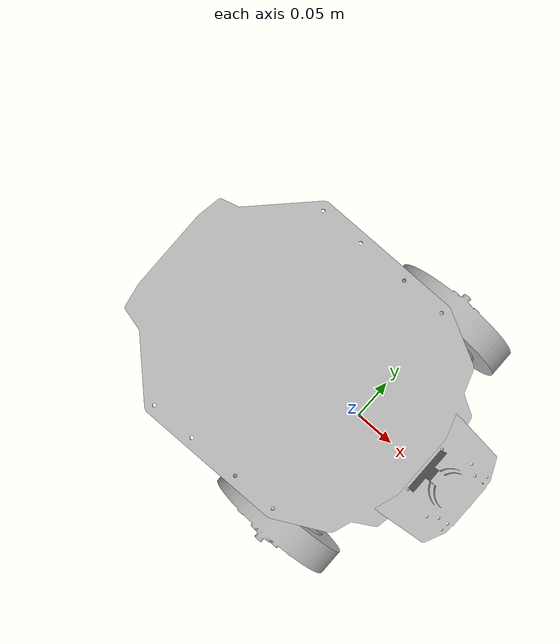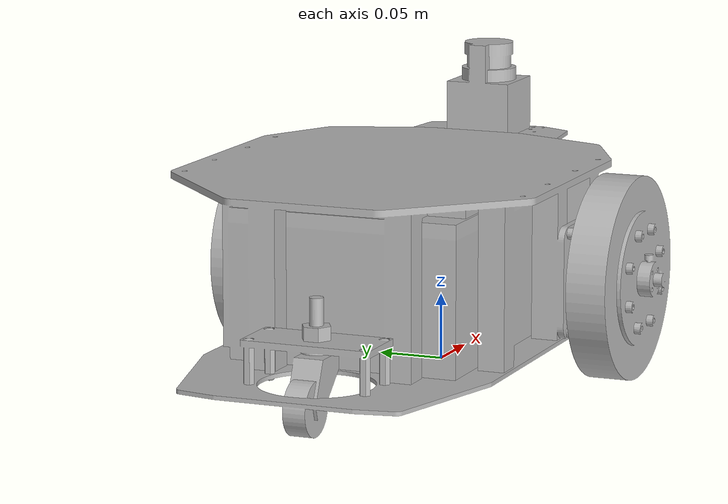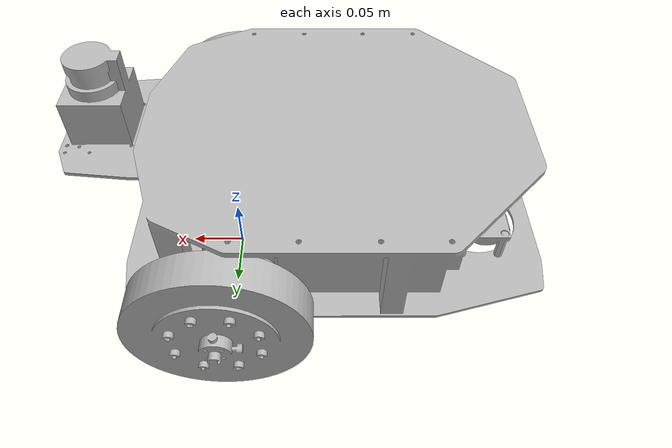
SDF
<sdf version='1.7'>
  <model name='vmegarover'>
    <link name='base_footprint'>
      <inertial>
        <pose>-0.058504 0 0.001394 0 -0 0</pose>
        <mass>13.972</mass>
        <inertia>
          <ixx>0.120899</ixx>
          <ixy>0</ixy>
          <ixz>-0.00746803</ixz>
          <iyy>0.216406</iyy>
          <iyz>1.61559e-27</iyz>
          <izz>0.275132</izz>
        </inertia>
      </inertial>
      <collision name='base_footprint_fixed_joint_lump__base_link_collision'>
        <pose>0 0 0 0 -0 0</pose>
        <geometry>
          <mesh>
            <scale>1 1 1</scale>
            <uri>model://vmegarover/meshes/stl/vmega_body.stl</uri>
          </mesh>
        </geometry>
        <surface>
          <contact>
            <ode/>
          </contact>
          <friction>
            <ode>
              <mu>0</mu>
              <mu2>0</mu2>
            </ode>
          </friction>
        </surface>
      </collision>
      <collision name='base_footprint_fixed_joint_lump__front_lrf_link_collision_1'>
        <pose>0.099 0 0.2155 -3.14159 0 0</pose>
        <geometry>
          <mesh>
            <scale>1 1 1</scale>
            <uri>model://vmegarover/meshes/stl/lrf.stl</uri>
          </mesh>
        </geometry>
        <surface>
          <contact>
            <ode/>
          </contact>
          <friction>
            <ode/>
          </friction>
        </surface>
      </collision>
      <visual name='base_footprint_fixed_joint_lump__base_link_visual'>
        <pose>0 0 0 0 -0 0</pose>
        <geometry>
          <mesh>
            <scale>1 1 1</scale>
            <uri>model://vmegarover/meshes/dae/vmega_body.dae</uri>
          </mesh>
        </geometry>
      </visual>
      <visual name='base_footprint_fixed_joint_lump__front_lrf_link_visual_1'>
        <pose>0.099 0 0.2155 -3.14159 0 0</pose>
        <geometry>
          <mesh>
            <scale>1 1 1</scale>
            <uri>model://vmegarover/meshes/dae/lrf.dae</uri>
          </mesh>
        </geometry>
      </visual>
      <velocity_decay/>
      <self_collide>0</self_collide>
      <gravity>1</gravity>
      <velocity_decay/>
      <sensor name='front_lrf_sensor' type='ray'>
        <visualize>0</visualize>
        <update_rate>40</update_rate>
        <ray>
          <scan>
            <horizontal>
              <samples>1000</samples>
              <resolution>1</resolution>
              <min_angle>-3.14</min_angle>
              <max_angle>3.14</max_angle>
            </horizontal>
          </scan>
          <range>
            <min>0.06</min>
            <max>10</max>
            <resolution>0.001</resolution>
          </range>
          <noise>
            <type>gaussian</type>
            <mean>0</mean>
            <stddev>0.03</stddev>
          </noise>
        </ray>
        <plugin name='gazebo_ros_front_lrf_controller' filename='libgazebo_ros_ray_sensor.so'>
          <ros>
            <remapping>~/out:=scan</remapping>
          </ros>
          <output_type>sensor_msgs/LaserScan</output_type>
          <frame_name>front_lrf_link</frame_name>
        </plugin>
        <pose>0.099 0 0.2155 -3.14159 -0 0</pose>
      </sensor>
    </link>
    <joint name='left_wheel_joint' type='revolute'>
      <pose relative_to='base_footprint'>0 0.14199 0.074742 0 0 -3.14159</pose>
      <parent>base_footprint</parent>
      <child>left_wheel_link</child>
      <axis>
        <xyz>0 -1 0</xyz>
        <limit>
          <lower>-1e+16</lower>
          <upper>1e+16</upper>
        </limit>
        <dynamics>
          <spring_reference>0</spring_reference>
          <spring_stiffness>0</spring_stiffness>
        </dynamics>
      </axis>
    </joint>
    <link name='left_wheel_link'>
      <pose relative_to='left_wheel_joint'>0 0 0 0 -0 0</pose>
      <inertial>
        <pose>0 0 0 -1.5708 0 0</pose>
        <mass>0.823</mass>
        <inertia>
          <ixx>0.00125014</ixx>
          <ixy>0</ixy>
          <ixz>0</ixz>
          <iyy>0.00125014</iyy>
          <iyz>0</iyz>
          <izz>0.00237682</izz>
        </inertia>
      </inertial>
      <collision name='left_wheel_link_collision'>
        <pose>0 0 0 -1.5708 0 0</pose>
        <geometry>
          <cylinder>
            <length>0.03</length>
            <radius>0.076</radius>
          </cylinder>
        </geometry>
        <surface>
          <contact>
            <ode/>
          </contact>
          <friction>
            <ode>
              <mu>1</mu>
              <mu2>1</mu2>
            </ode>
          </friction>
        </surface>
      </collision>
      <visual name='left_wheel_link_visual'>
        <pose>0 0 0 0 -0 0</pose>
        <geometry>
          <mesh>
            <scale>1 1 1</scale>
            <uri>model://vmegarover/meshes/dae/vmega_wheel.dae</uri>
          </mesh>
        </geometry>
      </visual>
      <gravity>1</gravity>
      <velocity_decay/>
      <self_collide>0</self_collide>
    </link>
    <joint name='right_wheel_joint' type='revolute'>
      <pose relative_to='base_footprint'>0 -0.14199 0.074742 0 -0 0</pose>
      <parent>base_footprint</parent>
      <child>right_wheel_link</child>
      <axis>
        <xyz>0 1 0</xyz>
        <limit>
          <lower>-1e+16</lower>
          <upper>1e+16</upper>
        </limit>
        <dynamics>
          <spring_reference>0</spring_reference>
          <spring_stiffness>0</spring_stiffness>
        </dynamics>
      </axis>
    </joint>
    <link name='right_wheel_link'>
      <pose relative_to='right_wheel_joint'>0 0 0 0 -0 0</pose>
      <inertial>
        <pose>0 0 0 -1.5708 0 0</pose>
        <mass>0.823</mass>
        <inertia>
          <ixx>0.00125014</ixx>
          <ixy>0</ixy>
          <ixz>0</ixz>
          <iyy>0.00125014</iyy>
          <iyz>0</iyz>
          <izz>0.00237682</izz>
        </inertia>
      </inertial>
      <collision name='right_wheel_link_collision'>
        <pose>0 0 0 -1.5708 0 0</pose>
        <geometry>
          <cylinder>
            <length>0.03</length>
            <radius>0.076</radius>
          </cylinder>
        </geometry>
        <surface>
          <contact>
            <ode/>
          </contact>
          <friction>
            <ode>
              <mu>1</mu>
              <mu2>1</mu2>
            </ode>
          </friction>
        </surface>
      </collision>
      <visual name='right_wheel_link_visual'>
        <pose>0 0 0 0 -0 0</pose>
        <geometry>
          <mesh>
            <scale>1 1 1</scale>
            <uri>model://vmegarover/meshes/dae/vmega_wheel.dae</uri>
          </mesh>
        </geometry>
      </visual>
      <gravity>1</gravity>
      <velocity_decay/>
      <self_collide>0</self_collide>
    </link>
    <static>0</static>

    <plugin name='diff_drive' filename='libgazebo_ros_diff_drive.so'>
      <ros>
        <namespace>/vmegarover</namespace>
      </ros>

      <update_rate>50</update_rate>
      <left_joint>left_wheel_joint</left_joint>
      <right_joint>right_wheel_joint</right_joint>

      <wheel_separation>0.313982</wheel_separation>
      <wheel_diameter>0.152</wheel_diameter>

      <publish_odom>true</publish_odom>
      <publish_odom_tf>true</publish_odom_tf>

      <odometry_frame>odom</odometry_frame>
      <robot_base_frame>base_footprint</robot_base_frame>
    </plugin>
  </model>
</sdf>
